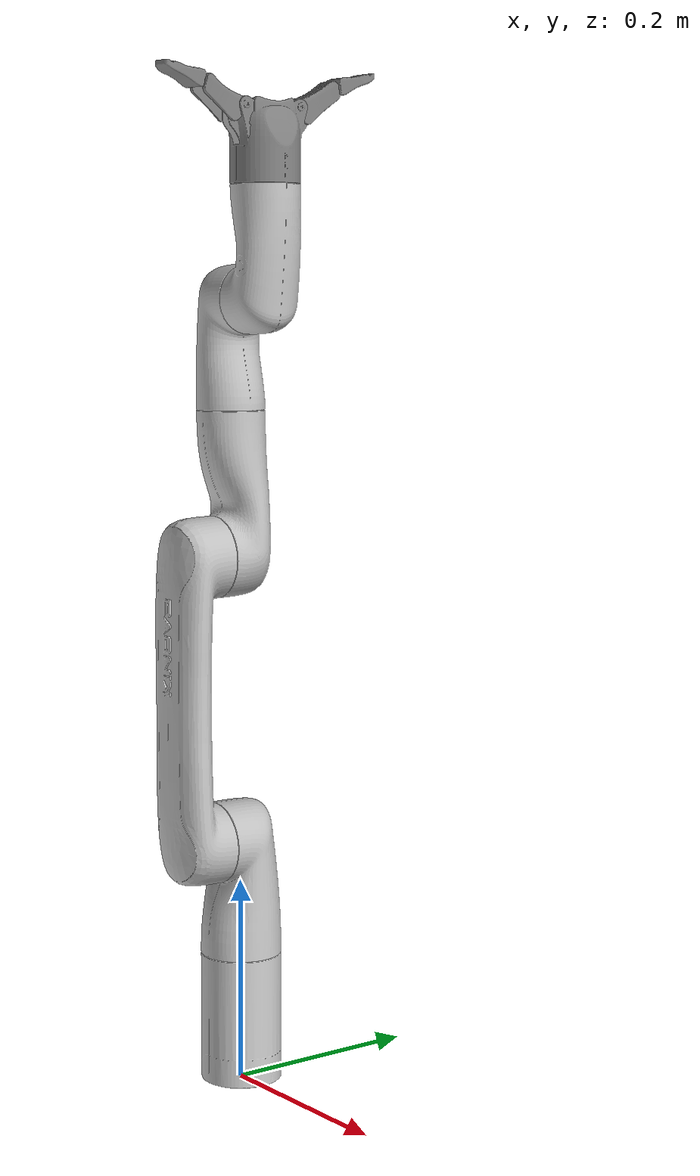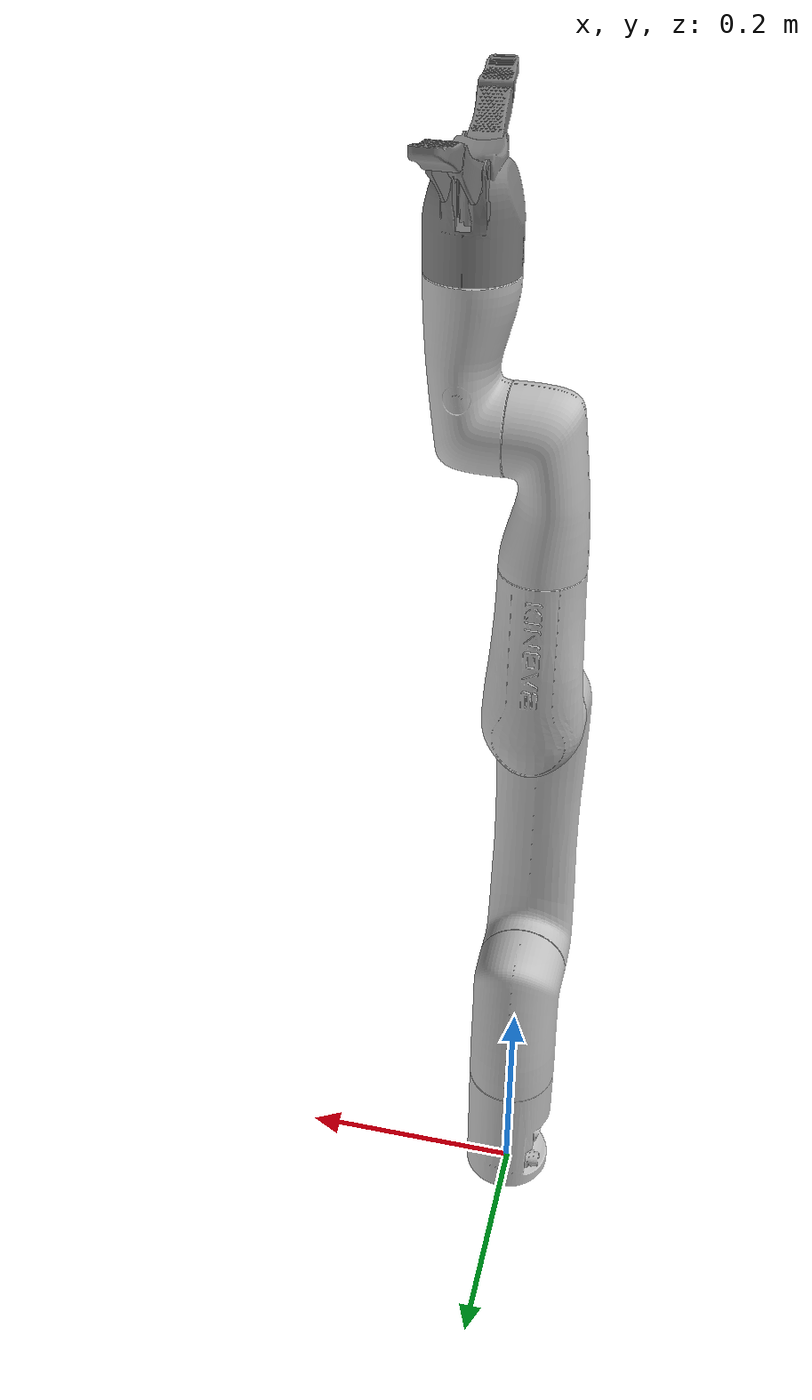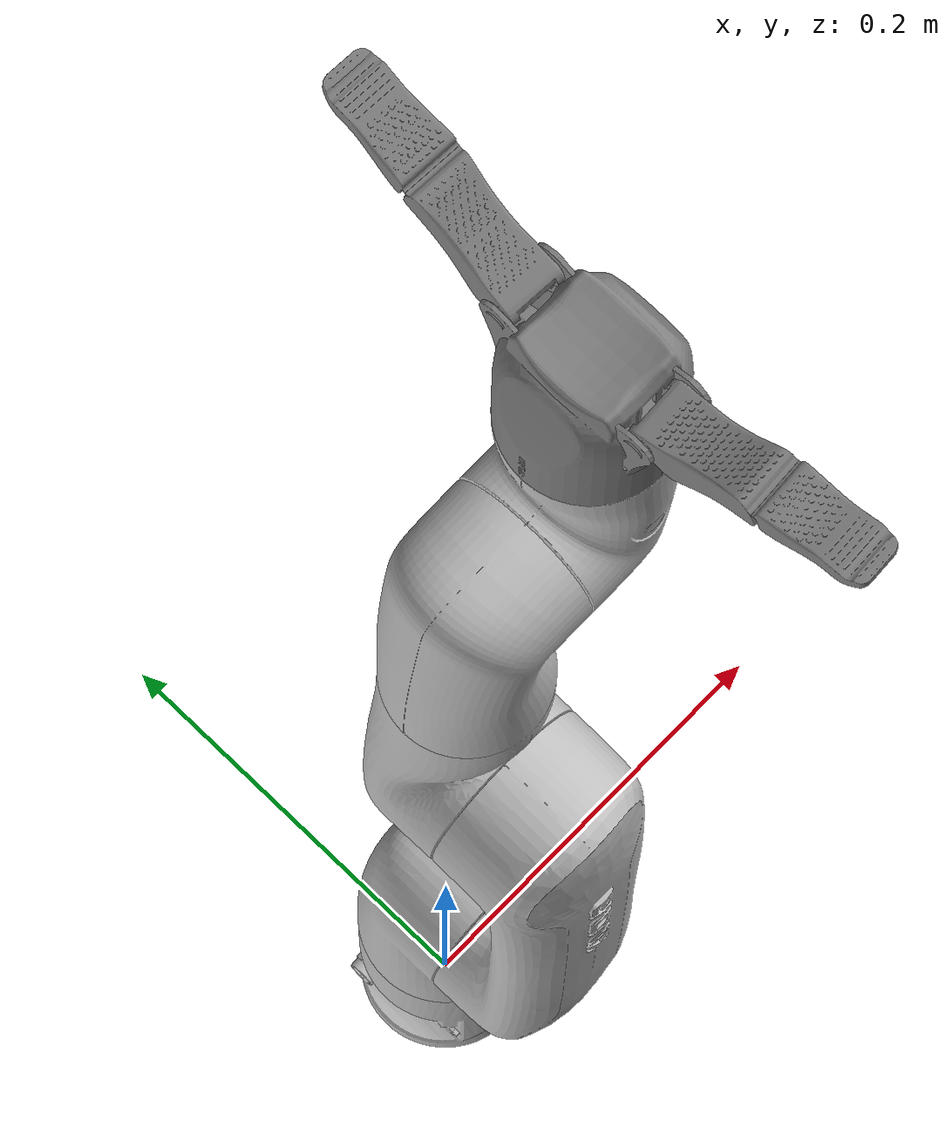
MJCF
<mujoco model="gen3_lite_gripper_position">
  <compiler angle="radian" meshdir="assets"/>
  <option integrator="implicitfast"/>

  <default>
    <default class="visual">
        <geom type="mesh" contype="0" conaffinity="0" group="2" material="kinova_dark"/>
      </default>
      <default class="collision">
        <geom type="mesh" group="3" contype="1" conaffinity="1"/>
      </default>
      <default class="large_actuator">
        <position kp="2000" kv="50" forcerange="-32 32"/>
      </default>
      <default class="small_actuator">
        <position kp="1000" kv="30" forcerange="-9 9"/>
      </default>
      <!-- Arm joint classes -->why
      <default class="arm_joint">
        <joint armature="0.1" frictionloss="1.0"/>
      </default>
    <!-- Gen3Lite 2F gripper classes (matches mujoco_menagerie exactly) -->
    <default class="gen3lite_2f">
      <mesh />
      <general biastype="affine"/>

      <!--TODO(Will) adjust these values as needed-->
      <joint axis="1 0 0"/>
      <default class="driver">
        <joint range="0.0 0.85" limited="true" armature="1e-5" solimplimit="0.95 0.99 0.001" solreflimit="0.005 1"/>
      </default>
      <default class="follower">
        <joint range="-0.50 0.21" limited="true" armature="1e-5" solimplimit="0.95 0.99 0.001" solreflimit="0.005 1"/>
      </default>

      <default class="gripper_visual">
        <geom type="mesh" contype="0" conaffinity="0" group="2"/>
      </default>
      <default class="gripper_collision">
        <geom type="mesh" group="3"/>
      </default>
    </default>
    <site size="0.001" rgba="0.5 0.5 0.5 0.3" group="4"/>
  </default>

  <asset>
    <material name="kinova_dark" rgba="0.75294 0.75294 0.75294 1"/>
    <material name="kinova_gray" rgba="0.4 0.4 0.4 1"/>
    <material name="metal" rgba="0.58 0.58 0.58 1"/>
    <material name="silicone" rgba="0.1882 0.1882 0.1882 1"/>
    <material name="gray" rgba="0.4627 0.4627 0.4627 1"/>
    <material name="black" rgba="0.149 0.149 0.149 1"/>

    <!-- Kinova Gen3Lite arm meshes -->
    <mesh name="base_link" file="base_link.stl"/>
    <mesh name="shoulder_link" file="shoulder_link.stl"/>
    <mesh name="arm_link" file="arm_link.stl"/>
    <mesh name="forearm_link" file="forearm_link.stl"/>
    <mesh name="lower_wrist_link" file="lower_wrist_link.stl"/>
    <mesh name="upper_wrist_link" file="upper_wrist_link.stl"/>

    <!-- Gen3Lite 2F Gripper Meshes -->
    <mesh name="gripper_base_link" file="gripper_base_link.stl"/>
    <mesh name="right_finger_prox_link" file="right_finger_prox_link.stl"/>
    <mesh name="left_finger_prox_link" file="left_finger_prox_link.stl"/>
    <mesh name="right_finger_dist_link" file="right_finger_dist_link.stl"/>
    <mesh name="left_finger_dist_link" file="left_finger_dist_link.stl"/>
  </asset>

  <worldbody>
    <body name="base_link">
      <inertial pos="0.00244324 0.00015573 0.08616742" mass="1.14608471"
      fullinertia="0.00335854 0.003311 0.00077158 3.9e-07 0.00010989 1.91e-06"/>
      <geom class="visual" mesh="base_link"/>
      <geom class="collision" mesh="base_link"/>

      <body name="shoulder_link" pos="0 0 0.12825" quat="1 0 0 0">
        <inertial pos="2.477e-05 0.02213531 0.09937686" mass="0.95974404"
        fullinertia="0.00165947 0.00140355 0.00089493 2e-08 3.6e-07 0.00034927"/>
        <joint name="joint_1" class="arm_joint" range="-2.69 2.69"/>
        <geom class="visual" mesh="shoulder_link"/>
        <geom class="collision" mesh="shoulder_link"/>

        <body name="arm_link" pos="0 -0.03 0.115" quat="0.7071 0.7071 0 0">
          <inertial pos="0.02998299 0.21154808 0.0453031" mass="1.17756164"
          fullinertia="0.01149277 0.00102851 0.01133492 1e-06 1.6e-07 0.00140765"/>
          <joint name="joint_2" class="arm_joint" range="-2.69 2.69"/>
          <geom class="visual" mesh="arm_link"/>
          <geom class="collision" mesh="arm_link"/>

          <body name="forearm_link" pos="0 0.28 0" quat="0 -1 0 0">
            <inertial pos="0.0301559 0.09502206 0.0073555" mass="0.59767669"
            fullinertia="0.00163256 0.00029798 0.00169091 7.11e-06 1.54e-06 9.587e-05"/>
            <joint name="joint_3" class="arm_joint" range="-2.69 2.69"/>
            <geom class="visual" mesh="forearm_link"/>
            <geom class="collision" mesh="forearm_link"/>

            <body name="lower_wrist_link" pos="0 -0.14 0.02" quat="0.7071 0.7071 0 0">
              <inertial pos="0.00575149 0.01000443 0.08719207" mass="0.52693412"
              fullinertia="0.00069098 0.00078519 0.00034115 2.4e-07 0.00016483 7.4e-07"/>
              <joint name="joint_4" class="arm_joint" range="-2.59 2.59"/>
              <geom class="visual" mesh="lower_wrist_link"/>
              <geom class="collision" mesh="lower_wrist_link"/>

              <body name="upper_wrist_link" pos="0.0285 0 0.105" quat="0.7071 0 0.7071 0">
                <inertial pos="0.08056517 0.00980409 0.01872799" mass="0.58097325"
                fullinertia="0.00021268 0.00106371 0.00108465 5.21e-06 2.91e-06 1.1e-07"/>
                <joint name="joint_5" class="arm_joint" range="-2.57 2.57"/>
                <geom class="visual" mesh="upper_wrist_link"/>
                <geom class="collision" mesh="upper_wrist_link"/>

                <!-- End effector link (180 deg rotation around X to match URDF) -->
                <body name="end_effector_link" pos="-0.105 0 0.0285" quat="0.7071 0 -0.7071 0">
                    <inertial pos="0 0 0" mass="0.0001" diaginertia="1e-6 1e-6 1e-6"/>
                    <joint name="joint_6" class="arm_joint" range="-2.59 2.59"/>

                  <body name="gripper_base_link" pos="0 0 0" quat="1 0 0 0" childclass="gen3lite_2f">
                    <inertial pos="4.03e-06 1.08e-05 0.041397" mass="0.1395"
                    fullinertia="0.00011614 0.00010327 9.707e-05 1e-08 4e-08 0"/>
                    <geom class="gripper_visual" mesh="gripper_base_link"/>
                    <geom class="gripper_collision" mesh="gripper_base_link" material="gray"/>

                    <body name="right_finger_prox_link" pos="0 -0.030501 0.070003" quat="0.4984 0.4715 0.5262 0.5025">
                      <inertial pos="0.020257 0.0063483 6.991e-05" mass="0.018385"
                      fullinertia="2.29e-06 4.56e-06 4.77e-06 1.43e-06 0 0"/>
                      <joint name="right_finger_bottom_joint"  axis="0 0 -1" class="driver"/>
                      <geom class="gripper_visual" mesh="right_finger_prox_link"/>
                      <geom class="gripper_collision" mesh="right_finger_prox_link" material="gray"/>

                      <body name="right_finger_dist_link" pos="-0.045636 0.020423 6.9901e-05" quat="1 0 0 0">
                        <inertial pos="0.018488 0.0011091 0" mass="0.010748"
                        fullinertia="6.3e-07 1.83e-06 1.61e-06 3.2e-07 0 0"/>
                        <joint name="right_finger_tip_joint"  axis="0 0 1" class="follower"/>
                        <geom class="gripper_visual" mesh="right_finger_dist_link"/>
                        <geom class="gripper_collision" mesh="right_finger_dist_link" material="gray"/>
                        <!--TODO(Will) need to add friction from pad_box2-->
                      </body>
                    </body>

                    <body name="left_finger_prox_link" pos="0 0.0305 0.070003" quat="0.4984 -0.4715 0.5262 -0.5025">
                      <inertial pos="0.020257 0.0063483 6.99e-05" mass="0.018385"
                      fullinertia="2.29e-06 4.56e-06 4.77e-06 1.43e-06 0 0"/>
                      <joint name="left_finger_bottom_joint" axis="0 0 1" class="driver"/>
                      <geom class="gripper_visual" mesh="left_finger_prox_link"/>
                      <geom class="gripper_collision" mesh="left_finger_prox_link" material="gray"/>

                      <body name="left_finger_dist_link" pos="-0.045636 -0.020423 6.9901e-05" quat="1 0 0 0">
                        <inertial pos="-0.018488 0.0011091 0" mass="0.010748"
                        fullinertia="6.3e-07 1.83e-06 1.61e-06 3.2e-07 0 0"/>
                        <joint name="left_finger_tip_joint" axis="0 0 -1" class="follower"/>
                        <geom class="gripper_visual" mesh="left_finger_dist_link"/>
                        <geom class="gripper_collision" mesh="left_finger_dist_link" material="gray"/>
                        <!--TODO(Will) need to add friction from pad_box2-->
                      </body>
                    </body>
                  </body>
                </body>
              </body>
            </body>
          </body>
        </body>
      </body>
    </body>
  </worldbody>

  <contact>
    <exclude body1="gripper_base_link" body2="right_finger_prox_link"/>
    <exclude body1="gripper_base_link" body2="left_finger_prox_link"/>
    <exclude body1="right_finger_prox_link" body2="right_finger_dist_link"/>
    <exclude body1="left_finger_dist_link" body2="left_finger_dist_link"/>
  </contact>

  <tendon>
    <fixed name="fingers_actuator">
      <joint joint="right_finger_bottom_joint" coef="0.5"/>
      <joint joint="left_finger_bottom_joint" coef="0.5"/>
    </fixed>
  </tendon>

  <equality>
    <joint joint1="right_finger_bottom_joint" joint2="left_finger_bottom_joint" polycoef="0 1 0 0 0" solimp="0.95 0.99 0.001" solref="0.005 1"/>
    <joint joint1="right_finger_bottom_joint" joint2="right_finger_tip_joint" polycoef="0.149 -0.676 0 0" solimp="0.95 0.99 0.001" solref="0.005 1"/>
    <joint joint1="right_finger_bottom_joint" joint2="left_finger_tip_joint" polycoef="0.149 -0.676 0 0" solimp="0.95 0.99 0.001" solref="0.005 1"/>
  </equality>

  <actuator>
    <!-- Arm position actuators -->
    <!-- TODO(Will) see about adding control range-->
    <position class="large_actuator" name="joint_1" joint="joint_1"/>
    <position class="large_actuator" name="joint_2" joint="joint_2"/>
    <position class="large_actuator" name="joint_3" joint="joint_3"/>
    <position class="small_actuator" name="joint_4" joint="joint_4"/>
    <position class="small_actuator" name="joint_5" joint="joint_5"/>
    <position class="small_actuator" name="joint_6" joint="joint_6"/>

    <!-- Gripper: single tendon-based actuator
         ctrl=0 → open (driver joints at 0), ctrl=255 → closed (driver joints at 0.8).
         gainprm[0] = 0.8 * 100 / 255 ≈ 0.3137255, kp=100 via biasprm. -->
     <general class="gen3lite_2f" name="fingers_actuator" tendon="fingers_actuator" forcerange="-100 100" ctrlrange="0 255"
      gainprm="0.313 0 0" biasprm="0 -50 -10"/>
  </actuator>

  <keyframe>
    <!-- 6 arm joints + 4 gripper joints-->
    <key name="home" qpos="0 0.26179939 3.14159265 -2.26892803 0 0.95993109 0 0 0 0"/>
    <key name="retract" qpos="0 -0.34906585 3.14159265 -2.54818071 0 -0.87266463 0 0 0 0"/>
  </keyframe>

</mujoco>
